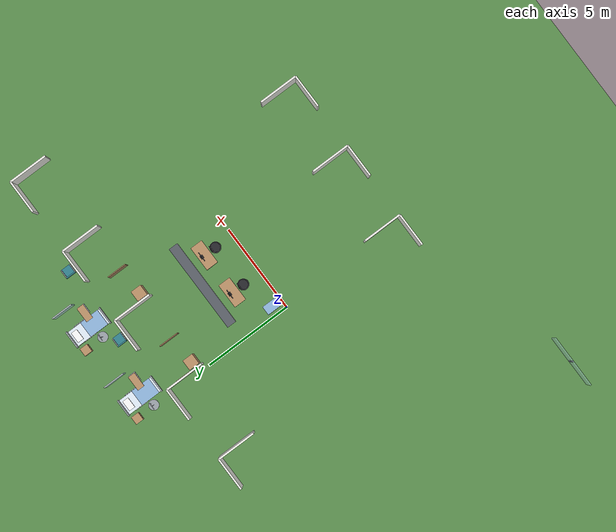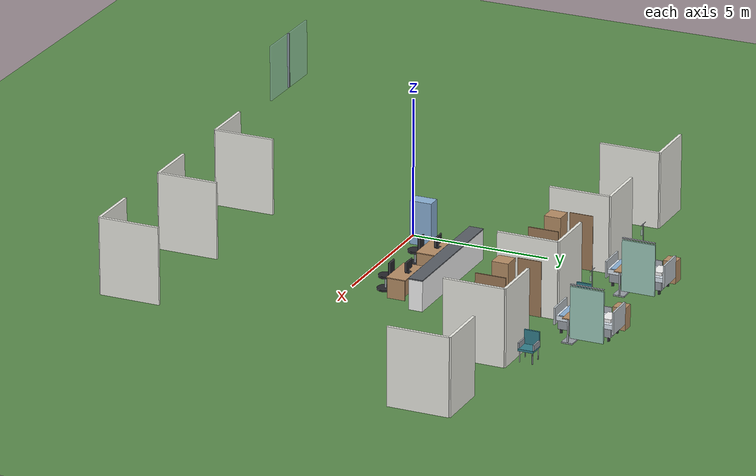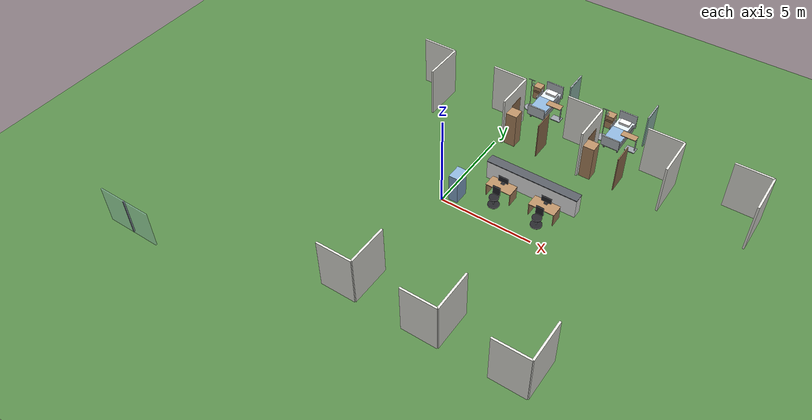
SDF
<sdf version="1.6">
 <world name="hospital">
  <include><uri>model://sun</uri></include>
  <model name="ground_plane">
   <static>true</static>
   <link name="link">
    <collision name="collision">
     <geometry><plane><normal>0 0 1</normal><size>100 100</size></plane></geometry>
     <surface>
      <contact><collide_bitmask>0xffff</collide_bitmask></contact>
      <friction><ode><mu>100</mu><mu2>50</mu2></ode></friction>
     </surface>
    </collision>
    <visual name="visual">
     <cast_shadows>false</cast_shadows>
     <geometry><plane><normal>0 0 1</normal><size>100 100</size></plane></geometry>
     <material>
      <ambient>0.35 0.55 0.3 1</ambient>
      <diffuse>0.35 0.55 0.3 1</diffuse>
      <specular>0 0 0 1</specular>
     </material>
    </visual>
   </link>
  </model>
  <model name="entrance_glass_doors">
   <static>true</static>
   <link name="link">
    <collision name="c0">
     <pose>-11 -10 1.05 0 0 0</pose>
     <geometry><box><size>3 0.06 2.1</size></box></geometry>
    </collision>
    <visual name="v0">
     <pose>-11 -10 1.05 0 0 0</pose>
     <geometry><box><size>3 0.06 2.1</size></box></geometry>
     <material>
      <ambient>0.7 0.85 0.95 0.35</ambient>
      <diffuse>0.7 0.85 0.95 0.35</diffuse>
      <specular>0.1 0.1 0.1 1</specular>
     </material>
    </visual>
    <visual name="v1">
     <pose>-11 -10 1.05 0 0 0</pose>
     <geometry><box><size>0.04 0.08 2.1</size></box></geometry>
     <material>
      <ambient>0.6 0.62 0.65 1</ambient>
      <diffuse>0.6 0.62 0.65 1</diffuse>
      <specular>0.1 0.1 0.1 1</specular>
     </material>
    </visual>
   </link>
  </model>
  <model name="bathroom_N1">
   <static>true</static>
   <link name="link">
    <collision name="c0">
     <pose>-4.1 6.3 1.4 0 0 0</pose>
     <geometry><box><size>0.1 2.2 2.8</size></box></geometry>
    </collision>
    <visual name="v0">
     <pose>-4.1 6.3 1.4 0 0 0</pose>
     <geometry><box><size>0.1 2.2 2.8</size></box></geometry>
     <material>
      <ambient>0.93 0.93 0.9 1</ambient>
      <diffuse>0.93 0.93 0.9 1</diffuse>
      <specular>0.1 0.1 0.1 1</specular>
     </material>
    </visual>
    <collision name="c1">
     <pose>-5.05 7.4 1.4 0 0 0</pose>
     <geometry><box><size>1.9 0.1 2.8</size></box></geometry>
    </collision>
    <visual name="v1">
     <pose>-5.05 7.4 1.4 0 0 0</pose>
     <geometry><box><size>1.9 0.1 2.8</size></box></geometry>
     <material>
      <ambient>0.93 0.93 0.9 1</ambient>
      <diffuse>0.93 0.93 0.9 1</diffuse>
      <specular>0.1 0.1 0.1 1</specular>
     </material>
    </visual>
   </link>
  </model>
  <model name="bathroom_N2">
   <static>true</static>
   <link name="link">
    <collision name="c0">
     <pose>0.3 6.3 1.4 0 0 0</pose>
     <geometry><box><size>0.1 2.2 2.8</size></box></geometry>
    </collision>
    <visual name="v0">
     <pose>0.3 6.3 1.4 0 0 0</pose>
     <geometry><box><size>0.1 2.2 2.8</size></box></geometry>
     <material>
      <ambient>0.93 0.93 0.9 1</ambient>
      <diffuse>0.93 0.93 0.9 1</diffuse>
      <specular>0.1 0.1 0.1 1</specular>
     </material>
    </visual>
    <collision name="c1">
     <pose>-0.65 7.4 1.4 0 0 0</pose>
     <geometry><box><size>1.9 0.1 2.8</size></box></geometry>
    </collision>
    <visual name="v1">
     <pose>-0.65 7.4 1.4 0 0 0</pose>
     <geometry><box><size>1.9 0.1 2.8</size></box></geometry>
     <material>
      <ambient>0.93 0.93 0.9 1</ambient>
      <diffuse>0.93 0.93 0.9 1</diffuse>
      <specular>0.1 0.1 0.1 1</specular>
     </material>
    </visual>
   </link>
  </model>
  <model name="bathroom_door_N2">
   <static>true</static>
   <pose>0.36 6.4 0 0 0 1.5708</pose>
   <link name="link">
    <visual name="v0">
     <pose>0 0 1 0 0 0</pose>
     <geometry><box><size>0.85 0.02 2</size></box></geometry>
     <material>
      <ambient>0.62 0.48 0.34 1</ambient>
      <diffuse>0.62 0.48 0.34 1</diffuse>
      <specular>0.1 0.1 0.1 1</specular>
     </material>
    </visual>
   </link>
  </model>
  <model name="door_N2">
   <static>true</static>
   <pose>2.3 5.83 0 0 0 0</pose>
   <link name="link">
    <collision name="c0">
     <pose>0 0 1.04 0 0 0</pose>
     <geometry><box><size>0.045 1.1 2.08</size></box></geometry>
    </collision>
    <visual name="v0">
     <pose>0 0 1.04 0 0 0</pose>
     <geometry><box><size>0.045 1.1 2.08</size></box></geometry>
     <material>
      <ambient>0.62 0.48 0.34 1</ambient>
      <diffuse>0.62 0.48 0.34 1</diffuse>
      <specular>0.1 0.1 0.1 1</specular>
     </material>
    </visual>
   </link>
  </model>
  <model name="wardrobe_N2">
   <static>true</static>
   <pose>0.7 5.6 0 0 0 3.1416</pose>
   <link name="link">
    <collision name="c0">
     <pose>0 0 1 0 0 0</pose>
     <geometry><box><size>0.6 0.6 2</size></box></geometry>
    </collision>
    <visual name="v0">
     <pose>0 0 1 0 0 0</pose>
     <geometry><box><size>0.6 0.6 2</size></box></geometry>
     <material>
      <ambient>0.72 0.56 0.4 1</ambient>
      <diffuse>0.72 0.56 0.4 1</diffuse>
      <specular>0.1 0.1 0.1 1</specular>
     </material>
    </visual>
    <visual name="v1">
     <pose>0 -0.301 1.025 0 0 0</pose>
     <geometry><box><size>0.02 0.005 0.25</size></box></geometry>
     <material>
      <ambient>0.6 0.62 0.65 1</ambient>
      <diffuse>0.6 0.62 0.65 1</diffuse>
      <specular>0.1 0.1 0.1 1</specular>
     </material>
    </visual>
   </link>
  </model>
  <model name="bed_N2">
   <static>true</static>
   <pose>0.9 8.8 0 0 0 0</pose>
   <link name="link">
    <collision name="c0">
     <pose>-0.38 -0.85 0.075 0 0 0</pose>
     <geometry><cylinder><radius>0.05</radius><length>0.15</length></cylinder></geometry>
    </collision>
    <visual name="v0">
     <pose>-0.38 -0.85 0.075 0 0 0</pose>
     <geometry><cylinder><radius>0.05</radius><length>0.15</length></cylinder></geometry>
     <material>
      <ambient>0.15 0.15 0.17 1</ambient>
      <diffuse>0.15 0.15 0.17 1</diffuse>
      <specular>0.1 0.1 0.1 1</specular>
     </material>
    </visual>
    <collision name="c1">
     <pose>-0.38 0.85 0.075 0 0 0</pose>
     <geometry><cylinder><radius>0.05</radius><length>0.15</length></cylinder></geometry>
    </collision>
    <visual name="v1">
     <pose>-0.38 0.85 0.075 0 0 0</pose>
     <geometry><cylinder><radius>0.05</radius><length>0.15</length></cylinder></geometry>
     <material>
      <ambient>0.15 0.15 0.17 1</ambient>
      <diffuse>0.15 0.15 0.17 1</diffuse>
      <specular>0.1 0.1 0.1 1</specular>
     </material>
    </visual>
    <collision name="c2">
     <pose>0.38 -0.85 0.075 0 0 0</pose>
     <geometry><cylinder><radius>0.05</radius><length>0.15</length></cylinder></geometry>
    </collision>
    <visual name="v2">
     <pose>0.38 -0.85 0.075 0 0 0</pose>
     <geometry><cylinder><radius>0.05</radius><length>0.15</length></cylinder></geometry>
     <material>
      <ambient>0.15 0.15 0.17 1</ambient>
      <diffuse>0.15 0.15 0.17 1</diffuse>
      <specular>0.1 0.1 0.1 1</specular>
     </material>
    </visual>
    <collision name="c3">
     <pose>0.38 0.85 0.075 0 0 0</pose>
     <geometry><cylinder><radius>0.05</radius><length>0.15</length></cylinder></geometry>
    </collision>
    <visual name="v3">
     <pose>0.38 0.85 0.075 0 0 0</pose>
     <geometry><cylinder><radius>0.05</radius><length>0.15</length></cylinder></geometry>
     <material>
      <ambient>0.15 0.15 0.17 1</ambient>
      <diffuse>0.15 0.15 0.17 1</diffuse>
      <specular>0.1 0.1 0.1 1</specular>
     </material>
    </visual>
    <collision name="c4">
     <pose>0 0 0.3 0 0 0</pose>
     <geometry><box><size>0.9 1.9 0.3</size></box></geometry>
    </collision>
    <visual name="v4">
     <pose>0 0 0.3 0 0 0</pose>
     <geometry><box><size>0.9 1.9 0.3</size></box></geometry>
     <material>
      <ambient>0.6 0.62 0.65 1</ambient>
      <diffuse>0.6 0.62 0.65 1</diffuse>
      <specular>0.1 0.1 0.1 1</specular>
     </material>
    </visual>
    <visual name="v5">
     <pose>0 0 0.535 0 0 0</pose>
     <geometry><box><size>0.9 2 0.17</size></box></geometry>
     <material>
      <ambient>0.88 0.92 0.96 1</ambient>
      <diffuse>0.88 0.92 0.96 1</diffuse>
      <specular>0.1 0.1 0.1 1</specular>
     </material>
    </visual>
    <collision name="c6">
     <pose>0 1.05 0.7 0 0 0</pose>
     <geometry><box><size>1 0.06 0.8</size></box></geometry>
    </collision>
    <visual name="v6">
     <pose>0 1.05 0.7 0 0 0</pose>
     <geometry><box><size>1 0.06 0.8</size></box></geometry>
     <material>
      <ambient>0.75 0.78 0.8 1</ambient>
      <diffuse>0.75 0.78 0.8 1</diffuse>
      <specular>0.1 0.1 0.1 1</specular>
     </material>
    </visual>
    <collision name="c7">
     <pose>0 -1.05 0.6 0 0 0</pose>
     <geometry><box><size>1 0.06 0.6</size></box></geometry>
    </collision>
    <visual name="v7">
     <pose>0 -1.05 0.6 0 0 0</pose>
     <geometry><box><size>1 0.06 0.6</size></box></geometry>
     <material>
      <ambient>0.75 0.78 0.8 1</ambient>
      <diffuse>0.75 0.78 0.8 1</diffuse>
      <specular>0.1 0.1 0.1 1</specular>
     </material>
    </visual>
    <visual name="v8">
     <pose>0 0.72 0.68 0 0 0</pose>
     <geometry><box><size>0.6 0.35 0.12</size></box></geometry>
     <material>
      <ambient>0.97 0.97 0.97 1</ambient>
      <diffuse>0.97 0.97 0.97 1</diffuse>
      <specular>0.1 0.1 0.1 1</specular>
     </material>
    </visual>
    <visual name="v9">
     <pose>0 -0.35 0.635 0 0 0</pose>
     <geometry><box><size>0.92 1.1 0.03</size></box></geometry>
     <material>
      <ambient>0.55 0.7 0.85 1</ambient>
      <diffuse>0.55 0.7 0.85 1</diffuse>
      <specular>0.1 0.1 0.1 1</specular>
     </material>
    </visual>
    <visual name="v10">
     <pose>-0.47 0.2 0.73 0 0 0</pose>
     <geometry><box><size>0.03 0.8 0.22</size></box></geometry>
     <material>
      <ambient>0.7 0.72 0.75 1</ambient>
      <diffuse>0.7 0.72 0.75 1</diffuse>
      <specular>0.1 0.1 0.1 1</specular>
     </material>
    </visual>
    <visual name="v11">
     <pose>0.47 0.2 0.73 0 0 0</pose>
     <geometry><box><size>0.03 0.8 0.22</size></box></geometry>
     <material>
      <ambient>0.7 0.72 0.75 1</ambient>
      <diffuse>0.7 0.72 0.75 1</diffuse>
      <specular>0.1 0.1 0.1 1</specular>
     </material>
    </visual>
   </link>
  </model>
  <model name="bedside_cabinet_N2">
   <static>true</static>
   <pose>0.05 9.6 0 0 0 0</pose>
   <link name="link">
    <collision name="c0">
     <pose>0 0 0.4 0 0 0</pose>
     <geometry><box><size>0.45 0.45 0.8</size></box></geometry>
    </collision>
    <visual name="v0">
     <pose>0 0 0.4 0 0 0</pose>
     <geometry><box><size>0.45 0.45 0.8</size></box></geometry>
     <material>
      <ambient>0.72 0.56 0.4 1</ambient>
      <diffuse>0.72 0.56 0.4 1</diffuse>
      <specular>0.1 0.1 0.1 1</specular>
     </material>
    </visual>
    <visual name="v1">
     <pose>0 -0.226 0.51 0 0 0</pose>
     <geometry><box><size>0.35 0.005 0.12</size></box></geometry>
     <material>
      <ambient>0.6 0.45 0.32 1</ambient>
      <diffuse>0.6 0.45 0.32 1</diffuse>
      <specular>0.1 0.1 0.1 1</specular>
     </material>
    </visual>
   </link>
  </model>
  <model name="iv_stand_N2">
   <static>true</static>
   <pose>0.1 8.55 0 0 0 0</pose>
   <link name="link">
    <collision name="c0">
     <pose>0 0 0.015 0 0 0</pose>
     <geometry><cylinder><radius>0.28</radius><length>0.03</length></cylinder></geometry>
    </collision>
    <visual name="v0">
     <pose>0 0 0.015 0 0 0</pose>
     <geometry><cylinder><radius>0.28</radius><length>0.03</length></cylinder></geometry>
     <material>
      <ambient>0.6 0.62 0.65 1</ambient>
      <diffuse>0.6 0.62 0.65 1</diffuse>
      <specular>0.1 0.1 0.1 1</specular>
     </material>
    </visual>
    <collision name="c1">
     <pose>0 0 0.98 0 0 0</pose>
     <geometry><cylinder><radius>0.015</radius><length>1.9</length></cylinder></geometry>
    </collision>
    <visual name="v1">
     <pose>0 0 0.98 0 0 0</pose>
     <geometry><cylinder><radius>0.015</radius><length>1.9</length></cylinder></geometry>
     <material>
      <ambient>0.7 0.72 0.75 1</ambient>
      <diffuse>0.7 0.72 0.75 1</diffuse>
      <specular>0.1 0.1 0.1 1</specular>
     </material>
    </visual>
    <visual name="v2">
     <pose>0 0 1.91 0 0 0</pose>
     <geometry><box><size>0.4 0.02 0.02</size></box></geometry>
     <material>
      <ambient>0.7 0.72 0.75 1</ambient>
      <diffuse>0.7 0.72 0.75 1</diffuse>
      <specular>0.1 0.1 0.1 1</specular>
     </material>
    </visual>
    <visual name="v3">
     <pose>0.12 0 1.64 0 0 0</pose>
     <geometry><box><size>0.1 0.03 0.18</size></box></geometry>
     <material>
      <ambient>0.85 0.92 0.95 0.7</ambient>
      <diffuse>0.85 0.92 0.95 0.7</diffuse>
      <specular>0.1 0.1 0.1 1</specular>
     </material>
    </visual>
   </link>
  </model>
  <model name="overbed_table_N2">
   <static>true</static>
   <pose>1.65 8.5 0 0 0 0</pose>
   <link name="link">
    <collision name="c0">
     <pose>0.15 0 0.025 0 0 0</pose>
     <geometry><box><size>0.55 0.4 0.05</size></box></geometry>
    </collision>
    <visual name="v0">
     <pose>0.15 0 0.025 0 0 0</pose>
     <geometry><box><size>0.55 0.4 0.05</size></box></geometry>
     <material>
      <ambient>0.6 0.62 0.65 1</ambient>
      <diffuse>0.6 0.62 0.65 1</diffuse>
      <specular>0.1 0.1 0.1 1</specular>
     </material>
    </visual>
    <collision name="c1">
     <pose>0.35 0 0.45 0 0 0</pose>
     <geometry><box><size>0.05 0.05 0.8</size></box></geometry>
    </collision>
    <visual name="v1">
     <pose>0.35 0 0.45 0 0 0</pose>
     <geometry><box><size>0.05 0.05 0.8</size></box></geometry>
     <material>
      <ambient>0.7 0.72 0.75 1</ambient>
      <diffuse>0.7 0.72 0.75 1</diffuse>
      <specular>0.1 0.1 0.1 1</specular>
     </material>
    </visual>
    <visual name="v2">
     <pose>-0.05 0 0.865 0 0 0</pose>
     <geometry><box><size>0.85 0.4 0.03</size></box></geometry>
     <material>
      <ambient>0.72 0.56 0.4 1</ambient>
      <diffuse>0.72 0.56 0.4 1</diffuse>
      <specular>0.1 0.1 0.1 1</specular>
     </material>
    </visual>
   </link>
  </model>
  <model name="curtain_N2">
   <static>true</static>
   <pose>2.3 9.3 0 0 0 0</pose>
   <link name="link">
    <collision name="c0">
     <pose>0 0 1.275 0 0 0</pose>
     <geometry><box><size>0.06 1.2 1.85</size></box></geometry>
    </collision>
    <visual name="v0">
     <pose>0 0 1.275 0 0 0</pose>
     <geometry><box><size>0.06 1.2 1.85</size></box></geometry>
     <material>
      <ambient>0.62 0.8 0.74 1</ambient>
      <diffuse>0.62 0.8 0.74 1</diffuse>
      <specular>0.1 0.1 0.1 1</specular>
     </material>
    </visual>
    <visual name="v1">
     <pose>0 0 2.265 0 0 0</pose>
     <geometry><box><size>0.06 1.2 0.03</size></box></geometry>
     <material>
      <ambient>0.7 0.72 0.75 1</ambient>
      <diffuse>0.7 0.72 0.75 1</diffuse>
      <specular>0.1 0.1 0.1 1</specular>
     </material>
    </visual>
   </link>
  </model>
  <model name="bathroom_N3">
   <static>true</static>
   <link name="link">
    <collision name="c0">
     <pose>4.7 6.3 1.4 0 0 0</pose>
     <geometry><box><size>0.1 2.2 2.8</size></box></geometry>
    </collision>
    <visual name="v0">
     <pose>4.7 6.3 1.4 0 0 0</pose>
     <geometry><box><size>0.1 2.2 2.8</size></box></geometry>
     <material>
      <ambient>0.93 0.93 0.9 1</ambient>
      <diffuse>0.93 0.93 0.9 1</diffuse>
      <specular>0.1 0.1 0.1 1</specular>
     </material>
    </visual>
    <collision name="c1">
     <pose>3.75 7.4 1.4 0 0 0</pose>
     <geometry><box><size>1.9 0.1 2.8</size></box></geometry>
    </collision>
    <visual name="v1">
     <pose>3.75 7.4 1.4 0 0 0</pose>
     <geometry><box><size>1.9 0.1 2.8</size></box></geometry>
     <material>
      <ambient>0.93 0.93 0.9 1</ambient>
      <diffuse>0.93 0.93 0.9 1</diffuse>
      <specular>0.1 0.1 0.1 1</specular>
     </material>
    </visual>
   </link>
  </model>
  <model name="bathroom_door_N3">
   <static>true</static>
   <pose>4.76 6.4 0 0 0 1.5708</pose>
   <link name="link">
    <visual name="v0">
     <pose>0 0 1 0 0 0</pose>
     <geometry><box><size>0.85 0.02 2</size></box></geometry>
     <material>
      <ambient>0.62 0.48 0.34 1</ambient>
      <diffuse>0.62 0.48 0.34 1</diffuse>
      <specular>0.1 0.1 0.1 1</specular>
     </material>
    </visual>
   </link>
  </model>
  <model name="door_N3">
   <static>true</static>
   <pose>6.7 5.83 0 0 0 0</pose>
   <link name="link">
    <collision name="c0">
     <pose>0 0 1.04 0 0 0</pose>
     <geometry><box><size>0.045 1.1 2.08</size></box></geometry>
    </collision>
    <visual name="v0">
     <pose>0 0 1.04 0 0 0</pose>
     <geometry><box><size>0.045 1.1 2.08</size></box></geometry>
     <material>
      <ambient>0.62 0.48 0.34 1</ambient>
      <diffuse>0.62 0.48 0.34 1</diffuse>
      <specular>0.1 0.1 0.1 1</specular>
     </material>
    </visual>
   </link>
  </model>
  <model name="wardrobe_N3">
   <static>true</static>
   <pose>5.1 5.6 0 0 0 3.1416</pose>
   <link name="link">
    <collision name="c0">
     <pose>0 0 1 0 0 0</pose>
     <geometry><box><size>0.6 0.6 2</size></box></geometry>
    </collision>
    <visual name="v0">
     <pose>0 0 1 0 0 0</pose>
     <geometry><box><size>0.6 0.6 2</size></box></geometry>
     <material>
      <ambient>0.72 0.56 0.4 1</ambient>
      <diffuse>0.72 0.56 0.4 1</diffuse>
      <specular>0.1 0.1 0.1 1</specular>
     </material>
    </visual>
    <visual name="v1">
     <pose>0 -0.301 1.025 0 0 0</pose>
     <geometry><box><size>0.02 0.005 0.25</size></box></geometry>
     <material>
      <ambient>0.6 0.62 0.65 1</ambient>
      <diffuse>0.6 0.62 0.65 1</diffuse>
      <specular>0.1 0.1 0.1 1</specular>
     </material>
    </visual>
   </link>
  </model>
  <model name="bed_N3">
   <static>true</static>
   <pose>5.3 8.8 0 0 0 0</pose>
   <link name="link">
    <collision name="c0">
     <pose>-0.38 -0.85 0.075 0 0 0</pose>
     <geometry><cylinder><radius>0.05</radius><length>0.15</length></cylinder></geometry>
    </collision>
    <visual name="v0">
     <pose>-0.38 -0.85 0.075 0 0 0</pose>
     <geometry><cylinder><radius>0.05</radius><length>0.15</length></cylinder></geometry>
     <material>
      <ambient>0.15 0.15 0.17 1</ambient>
      <diffuse>0.15 0.15 0.17 1</diffuse>
      <specular>0.1 0.1 0.1 1</specular>
     </material>
    </visual>
    <collision name="c1">
     <pose>-0.38 0.85 0.075 0 0 0</pose>
     <geometry><cylinder><radius>0.05</radius><length>0.15</length></cylinder></geometry>
    </collision>
    <visual name="v1">
     <pose>-0.38 0.85 0.075 0 0 0</pose>
     <geometry><cylinder><radius>0.05</radius><length>0.15</length></cylinder></geometry>
     <material>
      <ambient>0.15 0.15 0.17 1</ambient>
      <diffuse>0.15 0.15 0.17 1</diffuse>
      <specular>0.1 0.1 0.1 1</specular>
     </material>
    </visual>
    <collision name="c2">
     <pose>0.38 -0.85 0.075 0 0 0</pose>
     <geometry><cylinder><radius>0.05</radius><length>0.15</length></cylinder></geometry>
    </collision>
    <visual name="v2">
     <pose>0.38 -0.85 0.075 0 0 0</pose>
     <geometry><cylinder><radius>0.05</radius><length>0.15</length></cylinder></geometry>
     <material>
      <ambient>0.15 0.15 0.17 1</ambient>
      <diffuse>0.15 0.15 0.17 1</diffuse>
      <specular>0.1 0.1 0.1 1</specular>
     </material>
    </visual>
    <collision name="c3">
     <pose>0.38 0.85 0.075 0 0 0</pose>
     <geometry><cylinder><radius>0.05</radius><length>0.15</length></cylinder></geometry>
    </collision>
    <visual name="v3">
     <pose>0.38 0.85 0.075 0 0 0</pose>
     <geometry><cylinder><radius>0.05</radius><length>0.15</length></cylinder></geometry>
     <material>
      <ambient>0.15 0.15 0.17 1</ambient>
      <diffuse>0.15 0.15 0.17 1</diffuse>
      <specular>0.1 0.1 0.1 1</specular>
     </material>
    </visual>
    <collision name="c4">
     <pose>0 0 0.3 0 0 0</pose>
     <geometry><box><size>0.9 1.9 0.3</size></box></geometry>
    </collision>
    <visual name="v4">
     <pose>0 0 0.3 0 0 0</pose>
     <geometry><box><size>0.9 1.9 0.3</size></box></geometry>
     <material>
      <ambient>0.6 0.62 0.65 1</ambient>
      <diffuse>0.6 0.62 0.65 1</diffuse>
      <specular>0.1 0.1 0.1 1</specular>
     </material>
    </visual>
    <visual name="v5">
     <pose>0 0 0.535 0 0 0</pose>
     <geometry><box><size>0.9 2 0.17</size></box></geometry>
     <material>
      <ambient>0.88 0.92 0.96 1</ambient>
      <diffuse>0.88 0.92 0.96 1</diffuse>
      <specular>0.1 0.1 0.1 1</specular>
     </material>
    </visual>
    <collision name="c6">
     <pose>0 1.05 0.7 0 0 0</pose>
     <geometry><box><size>1 0.06 0.8</size></box></geometry>
    </collision>
    <visual name="v6">
     <pose>0 1.05 0.7 0 0 0</pose>
     <geometry><box><size>1 0.06 0.8</size></box></geometry>
     <material>
      <ambient>0.75 0.78 0.8 1</ambient>
      <diffuse>0.75 0.78 0.8 1</diffuse>
      <specular>0.1 0.1 0.1 1</specular>
     </material>
    </visual>
    <collision name="c7">
     <pose>0 -1.05 0.6 0 0 0</pose>
     <geometry><box><size>1 0.06 0.6</size></box></geometry>
    </collision>
    <visual name="v7">
     <pose>0 -1.05 0.6 0 0 0</pose>
     <geometry><box><size>1 0.06 0.6</size></box></geometry>
     <material>
      <ambient>0.75 0.78 0.8 1</ambient>
      <diffuse>0.75 0.78 0.8 1</diffuse>
      <specular>0.1 0.1 0.1 1</specular>
     </material>
    </visual>
    <visual name="v8">
     <pose>0 0.72 0.68 0 0 0</pose>
     <geometry><box><size>0.6 0.35 0.12</size></box></geometry>
     <material>
      <ambient>0.97 0.97 0.97 1</ambient>
      <diffuse>0.97 0.97 0.97 1</diffuse>
      <specular>0.1 0.1 0.1 1</specular>
     </material>
    </visual>
    <visual name="v9">
     <pose>0 -0.35 0.635 0 0 0</pose>
     <geometry><box><size>0.92 1.1 0.03</size></box></geometry>
     <material>
      <ambient>0.55 0.7 0.85 1</ambient>
      <diffuse>0.55 0.7 0.85 1</diffuse>
      <specular>0.1 0.1 0.1 1</specular>
     </material>
    </visual>
    <visual name="v10">
     <pose>-0.47 0.2 0.73 0 0 0</pose>
     <geometry><box><size>0.03 0.8 0.22</size></box></geometry>
     <material>
      <ambient>0.7 0.72 0.75 1</ambient>
      <diffuse>0.7 0.72 0.75 1</diffuse>
      <specular>0.1 0.1 0.1 1</specular>
     </material>
    </visual>
    <visual name="v11">
     <pose>0.47 0.2 0.73 0 0 0</pose>
     <geometry><box><size>0.03 0.8 0.22</size></box></geometry>
     <material>
      <ambient>0.7 0.72 0.75 1</ambient>
      <diffuse>0.7 0.72 0.75 1</diffuse>
      <specular>0.1 0.1 0.1 1</specular>
     </material>
    </visual>
   </link>
  </model>
  <model name="bedside_cabinet_N3">
   <static>true</static>
   <pose>4.45 9.6 0 0 0 0</pose>
   <link name="link">
    <collision name="c0">
     <pose>0 0 0.4 0 0 0</pose>
     <geometry><box><size>0.45 0.45 0.8</size></box></geometry>
    </collision>
    <visual name="v0">
     <pose>0 0 0.4 0 0 0</pose>
     <geometry><box><size>0.45 0.45 0.8</size></box></geometry>
     <material>
      <ambient>0.72 0.56 0.4 1</ambient>
      <diffuse>0.72 0.56 0.4 1</diffuse>
      <specular>0.1 0.1 0.1 1</specular>
     </material>
    </visual>
    <visual name="v1">
     <pose>0 -0.226 0.51 0 0 0</pose>
     <geometry><box><size>0.35 0.005 0.12</size></box></geometry>
     <material>
      <ambient>0.6 0.45 0.32 1</ambient>
      <diffuse>0.6 0.45 0.32 1</diffuse>
      <specular>0.1 0.1 0.1 1</specular>
     </material>
    </visual>
   </link>
  </model>
  <model name="iv_stand_N3">
   <static>true</static>
   <pose>4.5 8.55 0 0 0 0</pose>
   <link name="link">
    <collision name="c0">
     <pose>0 0 0.015 0 0 0</pose>
     <geometry><cylinder><radius>0.28</radius><length>0.03</length></cylinder></geometry>
    </collision>
    <visual name="v0">
     <pose>0 0 0.015 0 0 0</pose>
     <geometry><cylinder><radius>0.28</radius><length>0.03</length></cylinder></geometry>
     <material>
      <ambient>0.6 0.62 0.65 1</ambient>
      <diffuse>0.6 0.62 0.65 1</diffuse>
      <specular>0.1 0.1 0.1 1</specular>
     </material>
    </visual>
    <collision name="c1">
     <pose>0 0 0.98 0 0 0</pose>
     <geometry><cylinder><radius>0.015</radius><length>1.9</length></cylinder></geometry>
    </collision>
    <visual name="v1">
     <pose>0 0 0.98 0 0 0</pose>
     <geometry><cylinder><radius>0.015</radius><length>1.9</length></cylinder></geometry>
     <material>
      <ambient>0.7 0.72 0.75 1</ambient>
      <diffuse>0.7 0.72 0.75 1</diffuse>
      <specular>0.1 0.1 0.1 1</specular>
     </material>
    </visual>
    <visual name="v2">
     <pose>0 0 1.91 0 0 0</pose>
     <geometry><box><size>0.4 0.02 0.02</size></box></geometry>
     <material>
      <ambient>0.7 0.72 0.75 1</ambient>
      <diffuse>0.7 0.72 0.75 1</diffuse>
      <specular>0.1 0.1 0.1 1</specular>
     </material>
    </visual>
    <visual name="v3">
     <pose>0.12 0 1.64 0 0 0</pose>
     <geometry><box><size>0.1 0.03 0.18</size></box></geometry>
     <material>
      <ambient>0.85 0.92 0.95 0.7</ambient>
      <diffuse>0.85 0.92 0.95 0.7</diffuse>
      <specular>0.1 0.1 0.1 1</specular>
     </material>
    </visual>
   </link>
  </model>
  <model name="visitor_chair_N3">
   <static>true</static>
   <pose>3.85 7.9 0 0 0 1.5708</pose>
   <link name="link">
    <collision name="c0">
     <pose>-0.23 -0.23 0.2 0 0 0</pose>
     <geometry><cylinder><radius>0.02</radius><length>0.4</length></cylinder></geometry>
    </collision>
    <visual name="v0">
     <pose>-0.23 -0.23 0.2 0 0 0</pose>
     <geometry><cylinder><radius>0.02</radius><length>0.4</length></cylinder></geometry>
     <material>
      <ambient>0.6 0.62 0.65 1</ambient>
      <diffuse>0.6 0.62 0.65 1</diffuse>
      <specular>0.1 0.1 0.1 1</specular>
     </material>
    </visual>
    <collision name="c1">
     <pose>-0.23 0.23 0.2 0 0 0</pose>
     <geometry><cylinder><radius>0.02</radius><length>0.4</length></cylinder></geometry>
    </collision>
    <visual name="v1">
     <pose>-0.23 0.23 0.2 0 0 0</pose>
     <geometry><cylinder><radius>0.02</radius><length>0.4</length></cylinder></geometry>
     <material>
      <ambient>0.6 0.62 0.65 1</ambient>
      <diffuse>0.6 0.62 0.65 1</diffuse>
      <specular>0.1 0.1 0.1 1</specular>
     </material>
    </visual>
    <collision name="c2">
     <pose>0.23 -0.23 0.2 0 0 0</pose>
     <geometry><cylinder><radius>0.02</radius><length>0.4</length></cylinder></geometry>
    </collision>
    <visual name="v2">
     <pose>0.23 -0.23 0.2 0 0 0</pose>
     <geometry><cylinder><radius>0.02</radius><length>0.4</length></cylinder></geometry>
     <material>
      <ambient>0.6 0.62 0.65 1</ambient>
      <diffuse>0.6 0.62 0.65 1</diffuse>
      <specular>0.1 0.1 0.1 1</specular>
     </material>
    </visual>
    <collision name="c3">
     <pose>0.23 0.23 0.2 0 0 0</pose>
     <geometry><cylinder><radius>0.02</radius><length>0.4</length></cylinder></geometry>
    </collision>
    <visual name="v3">
     <pose>0.23 0.23 0.2 0 0 0</pose>
     <geometry><cylinder><radius>0.02</radius><length>0.4</length></cylinder></geometry>
     <material>
      <ambient>0.6 0.62 0.65 1</ambient>
      <diffuse>0.6 0.62 0.65 1</diffuse>
      <specular>0.1 0.1 0.1 1</specular>
     </material>
    </visual>
    <visual name="v4">
     <pose>0 0 0.44 0 0 0</pose>
     <geometry><box><size>0.55 0.55 0.08</size></box></geometry>
     <material>
      <ambient>0.2 0.5 0.55 1</ambient>
      <diffuse>0.2 0.5 0.55 1</diffuse>
      <specular>0.1 0.1 0.1 1</specular>
     </material>
    </visual>
    <visual name="v5">
     <pose>0 0.25 0.73 0 0 0</pose>
     <geometry><box><size>0.55 0.06 0.5</size></box></geometry>
     <material>
      <ambient>0.2 0.5 0.55 1</ambient>
      <diffuse>0.2 0.5 0.55 1</diffuse>
      <specular>0.1 0.1 0.1 1</specular>
     </material>
    </visual>
    <visual name="v6">
     <pose>-0.27 0 0.58 0 0 0</pose>
     <geometry><box><size>0.05 0.5 0.2</size></box></geometry>
     <material>
      <ambient>0.6 0.62 0.65 1</ambient>
      <diffuse>0.6 0.62 0.65 1</diffuse>
      <specular>0.1 0.1 0.1 1</specular>
     </material>
    </visual>
    <visual name="v7">
     <pose>0.27 0 0.58 0 0 0</pose>
     <geometry><box><size>0.05 0.5 0.2</size></box></geometry>
     <material>
      <ambient>0.6 0.62 0.65 1</ambient>
      <diffuse>0.6 0.62 0.65 1</diffuse>
      <specular>0.1 0.1 0.1 1</specular>
     </material>
    </visual>
   </link>
  </model>
  <model name="overbed_table_N3">
   <static>true</static>
   <pose>6.05 8.5 0 0 0 0</pose>
   <link name="link">
    <collision name="c0">
     <pose>0.15 0 0.025 0 0 0</pose>
     <geometry><box><size>0.55 0.4 0.05</size></box></geometry>
    </collision>
    <visual name="v0">
     <pose>0.15 0 0.025 0 0 0</pose>
     <geometry><box><size>0.55 0.4 0.05</size></box></geometry>
     <material>
      <ambient>0.6 0.62 0.65 1</ambient>
      <diffuse>0.6 0.62 0.65 1</diffuse>
      <specular>0.1 0.1 0.1 1</specular>
     </material>
    </visual>
    <collision name="c1">
     <pose>0.35 0 0.45 0 0 0</pose>
     <geometry><box><size>0.05 0.05 0.8</size></box></geometry>
    </collision>
    <visual name="v1">
     <pose>0.35 0 0.45 0 0 0</pose>
     <geometry><box><size>0.05 0.05 0.8</size></box></geometry>
     <material>
      <ambient>0.7 0.72 0.75 1</ambient>
      <diffuse>0.7 0.72 0.75 1</diffuse>
      <specular>0.1 0.1 0.1 1</specular>
     </material>
    </visual>
    <visual name="v2">
     <pose>-0.05 0 0.865 0 0 0</pose>
     <geometry><box><size>0.85 0.4 0.03</size></box></geometry>
     <material>
      <ambient>0.72 0.56 0.4 1</ambient>
      <diffuse>0.72 0.56 0.4 1</diffuse>
      <specular>0.1 0.1 0.1 1</specular>
     </material>
    </visual>
   </link>
  </model>
  <model name="curtain_N3">
   <static>true</static>
   <pose>6.7 9.3 0 0 0 0</pose>
   <link name="link">
    <collision name="c0">
     <pose>0 0 1.275 0 0 0</pose>
     <geometry><box><size>0.06 1.2 1.85</size></box></geometry>
    </collision>
    <visual name="v0">
     <pose>0 0 1.275 0 0 0</pose>
     <geometry><box><size>0.06 1.2 1.85</size></box></geometry>
     <material>
      <ambient>0.62 0.8 0.74 1</ambient>
      <diffuse>0.62 0.8 0.74 1</diffuse>
      <specular>0.1 0.1 0.1 1</specular>
     </material>
    </visual>
    <visual name="v1">
     <pose>0 0 2.265 0 0 0</pose>
     <geometry><box><size>0.06 1.2 0.03</size></box></geometry>
     <material>
      <ambient>0.7 0.72 0.75 1</ambient>
      <diffuse>0.7 0.72 0.75 1</diffuse>
      <specular>0.1 0.1 0.1 1</specular>
     </material>
    </visual>
   </link>
  </model>
  <model name="bathroom_N4">
   <static>true</static>
   <link name="link">
    <collision name="c0">
     <pose>9.1 6.3 1.4 0 0 0</pose>
     <geometry><box><size>0.1 2.2 2.8</size></box></geometry>
    </collision>
    <visual name="v0">
     <pose>9.1 6.3 1.4 0 0 0</pose>
     <geometry><box><size>0.1 2.2 2.8</size></box></geometry>
     <material>
      <ambient>0.93 0.93 0.9 1</ambient>
      <diffuse>0.93 0.93 0.9 1</diffuse>
      <specular>0.1 0.1 0.1 1</specular>
     </material>
    </visual>
    <collision name="c1">
     <pose>8.15 7.4 1.4 0 0 0</pose>
     <geometry><box><size>1.9 0.1 2.8</size></box></geometry>
    </collision>
    <visual name="v1">
     <pose>8.15 7.4 1.4 0 0 0</pose>
     <geometry><box><size>1.9 0.1 2.8</size></box></geometry>
     <material>
      <ambient>0.93 0.93 0.9 1</ambient>
      <diffuse>0.93 0.93 0.9 1</diffuse>
      <specular>0.1 0.1 0.1 1</specular>
     </material>
    </visual>
   </link>
  </model>
  <model name="visitor_chair_N4">
   <static>true</static>
   <pose>8.25 7.9 0 0 0 1.5708</pose>
   <link name="link">
    <collision name="c0">
     <pose>-0.23 -0.23 0.2 0 0 0</pose>
     <geometry><cylinder><radius>0.02</radius><length>0.4</length></cylinder></geometry>
    </collision>
    <visual name="v0">
     <pose>-0.23 -0.23 0.2 0 0 0</pose>
     <geometry><cylinder><radius>0.02</radius><length>0.4</length></cylinder></geometry>
     <material>
      <ambient>0.6 0.62 0.65 1</ambient>
      <diffuse>0.6 0.62 0.65 1</diffuse>
      <specular>0.1 0.1 0.1 1</specular>
     </material>
    </visual>
    <collision name="c1">
     <pose>-0.23 0.23 0.2 0 0 0</pose>
     <geometry><cylinder><radius>0.02</radius><length>0.4</length></cylinder></geometry>
    </collision>
    <visual name="v1">
     <pose>-0.23 0.23 0.2 0 0 0</pose>
     <geometry><cylinder><radius>0.02</radius><length>0.4</length></cylinder></geometry>
     <material>
      <ambient>0.6 0.62 0.65 1</ambient>
      <diffuse>0.6 0.62 0.65 1</diffuse>
      <specular>0.1 0.1 0.1 1</specular>
     </material>
    </visual>
    <collision name="c2">
     <pose>0.23 -0.23 0.2 0 0 0</pose>
     <geometry><cylinder><radius>0.02</radius><length>0.4</length></cylinder></geometry>
    </collision>
    <visual name="v2">
     <pose>0.23 -0.23 0.2 0 0 0</pose>
     <geometry><cylinder><radius>0.02</radius><length>0.4</length></cylinder></geometry>
     <material>
      <ambient>0.6 0.62 0.65 1</ambient>
      <diffuse>0.6 0.62 0.65 1</diffuse>
      <specular>0.1 0.1 0.1 1</specular>
     </material>
    </visual>
    <collision name="c3">
     <pose>0.23 0.23 0.2 0 0 0</pose>
     <geometry><cylinder><radius>0.02</radius><length>0.4</length></cylinder></geometry>
    </collision>
    <visual name="v3">
     <pose>0.23 0.23 0.2 0 0 0</pose>
     <geometry><cylinder><radius>0.02</radius><length>0.4</length></cylinder></geometry>
     <material>
      <ambient>0.6 0.62 0.65 1</ambient>
      <diffuse>0.6 0.62 0.65 1</diffuse>
      <specular>0.1 0.1 0.1 1</specular>
     </material>
    </visual>
    <visual name="v4">
     <pose>0 0 0.44 0 0 0</pose>
     <geometry><box><size>0.55 0.55 0.08</size></box></geometry>
     <material>
      <ambient>0.2 0.5 0.55 1</ambient>
      <diffuse>0.2 0.5 0.55 1</diffuse>
      <specular>0.1 0.1 0.1 1</specular>
     </material>
    </visual>
    <visual name="v5">
     <pose>0 0.25 0.73 0 0 0</pose>
     <geometry><box><size>0.55 0.06 0.5</size></box></geometry>
     <material>
      <ambient>0.2 0.5 0.55 1</ambient>
      <diffuse>0.2 0.5 0.55 1</diffuse>
      <specular>0.1 0.1 0.1 1</specular>
     </material>
    </visual>
    <visual name="v6">
     <pose>-0.27 0 0.58 0 0 0</pose>
     <geometry><box><size>0.05 0.5 0.2</size></box></geometry>
     <material>
      <ambient>0.6 0.62 0.65 1</ambient>
      <diffuse>0.6 0.62 0.65 1</diffuse>
      <specular>0.1 0.1 0.1 1</specular>
     </material>
    </visual>
    <visual name="v7">
     <pose>0.27 0 0.58 0 0 0</pose>
     <geometry><box><size>0.05 0.5 0.2</size></box></geometry>
     <material>
      <ambient>0.6 0.62 0.65 1</ambient>
      <diffuse>0.6 0.62 0.65 1</diffuse>
      <specular>0.1 0.1 0.1 1</specular>
     </material>
    </visual>
   </link>
  </model>
  <model name="bathroom_N5">
   <static>true</static>
   <link name="link">
    <collision name="c0">
     <pose>13.5 6.3 1.4 0 0 0</pose>
     <geometry><box><size>0.1 2.2 2.8</size></box></geometry>
    </collision>
    <visual name="v0">
     <pose>13.5 6.3 1.4 0 0 0</pose>
     <geometry><box><size>0.1 2.2 2.8</size></box></geometry>
     <material>
      <ambient>0.93 0.93 0.9 1</ambient>
      <diffuse>0.93 0.93 0.9 1</diffuse>
      <specular>0.1 0.1 0.1 1</specular>
     </material>
    </visual>
    <collision name="c1">
     <pose>12.55 7.4 1.4 0 0 0</pose>
     <geometry><box><size>1.9 0.1 2.8</size></box></geometry>
    </collision>
    <visual name="v1">
     <pose>12.55 7.4 1.4 0 0 0</pose>
     <geometry><box><size>1.9 0.1 2.8</size></box></geometry>
     <material>
      <ambient>0.93 0.93 0.9 1</ambient>
      <diffuse>0.93 0.93 0.9 1</diffuse>
      <specular>0.1 0.1 0.1 1</specular>
     </material>
    </visual>
   </link>
  </model>
  <model name="bathroom_S2">
   <static>true</static>
   <link name="link">
    <collision name="c0">
     <pose>0.3 -6.3 1.4 0 0 0</pose>
     <geometry><box><size>0.1 2.2 2.8</size></box></geometry>
    </collision>
    <visual name="v0">
     <pose>0.3 -6.3 1.4 0 0 0</pose>
     <geometry><box><size>0.1 2.2 2.8</size></box></geometry>
     <material>
      <ambient>0.93 0.93 0.9 1</ambient>
      <diffuse>0.93 0.93 0.9 1</diffuse>
      <specular>0.1 0.1 0.1 1</specular>
     </material>
    </visual>
    <collision name="c1">
     <pose>-0.65 -7.4 1.4 0 0 0</pose>
     <geometry><box><size>1.9 0.1 2.8</size></box></geometry>
    </collision>
    <visual name="v1">
     <pose>-0.65 -7.4 1.4 0 0 0</pose>
     <geometry><box><size>1.9 0.1 2.8</size></box></geometry>
     <material>
      <ambient>0.93 0.93 0.9 1</ambient>
      <diffuse>0.93 0.93 0.9 1</diffuse>
      <specular>0.1 0.1 0.1 1</specular>
     </material>
    </visual>
   </link>
  </model>
  <model name="bathroom_S3">
   <static>true</static>
   <link name="link">
    <collision name="c0">
     <pose>4.7 -6.3 1.4 0 0 0</pose>
     <geometry><box><size>0.1 2.2 2.8</size></box></geometry>
    </collision>
    <visual name="v0">
     <pose>4.7 -6.3 1.4 0 0 0</pose>
     <geometry><box><size>0.1 2.2 2.8</size></box></geometry>
     <material>
      <ambient>0.93 0.93 0.9 1</ambient>
      <diffuse>0.93 0.93 0.9 1</diffuse>
      <specular>0.1 0.1 0.1 1</specular>
     </material>
    </visual>
    <collision name="c1">
     <pose>3.75 -7.4 1.4 0 0 0</pose>
     <geometry><box><size>1.9 0.1 2.8</size></box></geometry>
    </collision>
    <visual name="v1">
     <pose>3.75 -7.4 1.4 0 0 0</pose>
     <geometry><box><size>1.9 0.1 2.8</size></box></geometry>
     <material>
      <ambient>0.93 0.93 0.9 1</ambient>
      <diffuse>0.93 0.93 0.9 1</diffuse>
      <specular>0.1 0.1 0.1 1</specular>
     </material>
    </visual>
   </link>
  </model>
  <model name="bathroom_S4">
   <static>true</static>
   <link name="link">
    <collision name="c0">
     <pose>9.1 -6.3 1.4 0 0 0</pose>
     <geometry><box><size>0.1 2.2 2.8</size></box></geometry>
    </collision>
    <visual name="v0">
     <pose>9.1 -6.3 1.4 0 0 0</pose>
     <geometry><box><size>0.1 2.2 2.8</size></box></geometry>
     <material>
      <ambient>0.93 0.93 0.9 1</ambient>
      <diffuse>0.93 0.93 0.9 1</diffuse>
      <specular>0.1 0.1 0.1 1</specular>
     </material>
    </visual>
    <collision name="c1">
     <pose>8.15 -7.4 1.4 0 0 0</pose>
     <geometry><box><size>1.9 0.1 2.8</size></box></geometry>
    </collision>
    <visual name="v1">
     <pose>8.15 -7.4 1.4 0 0 0</pose>
     <geometry><box><size>1.9 0.1 2.8</size></box></geometry>
     <material>
      <ambient>0.93 0.93 0.9 1</ambient>
      <diffuse>0.93 0.93 0.9 1</diffuse>
      <specular>0.1 0.1 0.1 1</specular>
     </material>
    </visual>
   </link>
  </model>
  <model name="nurse_counter">
   <static>true</static>
   <pose>3.5 2.8 0 0 0 0</pose>
   <link name="link">
    <collision name="c0">
     <pose>0 0 0.55 0 0 0</pose>
     <geometry><box><size>5 0.5 1.1</size></box></geometry>
    </collision>
    <visual name="v0">
     <pose>0 0 0.55 0 0 0</pose>
     <geometry><box><size>5 0.5 1.1</size></box></geometry>
     <material>
      <ambient>0.97 0.97 0.97 1</ambient>
      <diffuse>0.97 0.97 0.97 1</diffuse>
      <specular>0.1 0.1 0.1 1</specular>
     </material>
    </visual>
    <visual name="v1">
     <pose>0 0 1.12 0 0 0</pose>
     <geometry><box><size>5.02 0.52 0.04</size></box></geometry>
     <material>
      <ambient>0.35 0.37 0.4 1</ambient>
      <diffuse>0.35 0.37 0.4 1</diffuse>
      <specular>0.1 0.1 0.1 1</specular>
     </material>
    </visual>
   </link>
  </model>
  <model name="nurse_desk_1">
   <static>true</static>
   <pose>2.3 1.8 0 0 0 0</pose>
   <link name="link">
    <visual name="v0">
     <pose>0 0 0.735 0 0 0</pose>
     <geometry><box><size>1.4 0.7 0.03</size></box></geometry>
     <material>
      <ambient>0.72 0.56 0.4 1</ambient>
      <diffuse>0.72 0.56 0.4 1</diffuse>
      <specular>0.1 0.1 0.1 1</specular>
     </material>
    </visual>
    <collision name="c1">
     <pose>-0.67 0 0.36 0 0 0</pose>
     <geometry><box><size>0.04 0.66 0.72</size></box></geometry>
    </collision>
    <visual name="v1">
     <pose>-0.67 0 0.36 0 0 0</pose>
     <geometry><box><size>0.04 0.66 0.72</size></box></geometry>
     <material>
      <ambient>0.72 0.56 0.4 1</ambient>
      <diffuse>0.72 0.56 0.4 1</diffuse>
      <specular>0.1 0.1 0.1 1</specular>
     </material>
    </visual>
    <collision name="c2">
     <pose>0.67 0 0.36 0 0 0</pose>
     <geometry><box><size>0.04 0.66 0.72</size></box></geometry>
    </collision>
    <visual name="v2">
     <pose>0.67 0 0.36 0 0 0</pose>
     <geometry><box><size>0.04 0.66 0.72</size></box></geometry>
     <material>
      <ambient>0.72 0.56 0.4 1</ambient>
      <diffuse>0.72 0.56 0.4 1</diffuse>
      <specular>0.1 0.1 0.1 1</specular>
     </material>
    </visual>
    <collision name="c3">
     <pose>0 0.32 0.435 0 0 0</pose>
     <geometry><box><size>1.32 0.02 0.57</size></box></geometry>
    </collision>
    <visual name="v3">
     <pose>0 0.32 0.435 0 0 0</pose>
     <geometry><box><size>1.32 0.02 0.57</size></box></geometry>
     <material>
      <ambient>0.72 0.56 0.4 1</ambient>
      <diffuse>0.72 0.56 0.4 1</diffuse>
      <specular>0.1 0.1 0.1 1</specular>
     </material>
    </visual>
    <visual name="v4">
     <pose>0 0.15 0.76 0 0 0</pose>
     <geometry><box><size>0.2 0.15 0.02</size></box></geometry>
     <material>
      <ambient>0.15 0.15 0.17 1</ambient>
      <diffuse>0.15 0.15 0.17 1</diffuse>
      <specular>0.1 0.1 0.1 1</specular>
     </material>
    </visual>
    <visual name="v5">
     <pose>0 0.17 0.83 0 0 0</pose>
     <geometry><box><size>0.04 0.04 0.12</size></box></geometry>
     <material>
      <ambient>0.15 0.15 0.17 1</ambient>
      <diffuse>0.15 0.15 0.17 1</diffuse>
      <specular>0.1 0.1 0.1 1</specular>
     </material>
    </visual>
    <visual name="v6">
     <pose>0 0.15 1.015 0 0 0</pose>
     <geometry><box><size>0.55 0.03 0.33</size></box></geometry>
     <material>
      <ambient>0.15 0.15 0.17 1</ambient>
      <diffuse>0.15 0.15 0.17 1</diffuse>
      <specular>0.1 0.1 0.1 1</specular>
     </material>
    </visual>
   </link>
  </model>
  <model name="nurse_desk_2">
   <static>true</static>
   <pose>4.7 1.8 0 0 0 0</pose>
   <link name="link">
    <visual name="v0">
     <pose>0 0 0.735 0 0 0</pose>
     <geometry><box><size>1.4 0.7 0.03</size></box></geometry>
     <material>
      <ambient>0.72 0.56 0.4 1</ambient>
      <diffuse>0.72 0.56 0.4 1</diffuse>
      <specular>0.1 0.1 0.1 1</specular>
     </material>
    </visual>
    <collision name="c1">
     <pose>-0.67 0 0.36 0 0 0</pose>
     <geometry><box><size>0.04 0.66 0.72</size></box></geometry>
    </collision>
    <visual name="v1">
     <pose>-0.67 0 0.36 0 0 0</pose>
     <geometry><box><size>0.04 0.66 0.72</size></box></geometry>
     <material>
      <ambient>0.72 0.56 0.4 1</ambient>
      <diffuse>0.72 0.56 0.4 1</diffuse>
      <specular>0.1 0.1 0.1 1</specular>
     </material>
    </visual>
    <collision name="c2">
     <pose>0.67 0 0.36 0 0 0</pose>
     <geometry><box><size>0.04 0.66 0.72</size></box></geometry>
    </collision>
    <visual name="v2">
     <pose>0.67 0 0.36 0 0 0</pose>
     <geometry><box><size>0.04 0.66 0.72</size></box></geometry>
     <material>
      <ambient>0.72 0.56 0.4 1</ambient>
      <diffuse>0.72 0.56 0.4 1</diffuse>
      <specular>0.1 0.1 0.1 1</specular>
     </material>
    </visual>
    <collision name="c3">
     <pose>0 0.32 0.435 0 0 0</pose>
     <geometry><box><size>1.32 0.02 0.57</size></box></geometry>
    </collision>
    <visual name="v3">
     <pose>0 0.32 0.435 0 0 0</pose>
     <geometry><box><size>1.32 0.02 0.57</size></box></geometry>
     <material>
      <ambient>0.72 0.56 0.4 1</ambient>
      <diffuse>0.72 0.56 0.4 1</diffuse>
      <specular>0.1 0.1 0.1 1</specular>
     </material>
    </visual>
    <visual name="v4">
     <pose>0 0.15 0.76 0 0 0</pose>
     <geometry><box><size>0.2 0.15 0.02</size></box></geometry>
     <material>
      <ambient>0.15 0.15 0.17 1</ambient>
      <diffuse>0.15 0.15 0.17 1</diffuse>
      <specular>0.1 0.1 0.1 1</specular>
     </material>
    </visual>
    <visual name="v5">
     <pose>0 0.17 0.83 0 0 0</pose>
     <geometry><box><size>0.04 0.04 0.12</size></box></geometry>
     <material>
      <ambient>0.15 0.15 0.17 1</ambient>
      <diffuse>0.15 0.15 0.17 1</diffuse>
      <specular>0.1 0.1 0.1 1</specular>
     </material>
    </visual>
    <visual name="v6">
     <pose>0 0.15 1.015 0 0 0</pose>
     <geometry><box><size>0.55 0.03 0.33</size></box></geometry>
     <material>
      <ambient>0.15 0.15 0.17 1</ambient>
      <diffuse>0.15 0.15 0.17 1</diffuse>
      <specular>0.1 0.1 0.1 1</specular>
     </material>
    </visual>
   </link>
  </model>
  <model name="nurse_chair_1">
   <static>true</static>
   <pose>2.3 1.1 0 0 0 0</pose>
   <link name="link">
    <collision name="c0">
     <pose>0 0 0.025 0 0 0</pose>
     <geometry><cylinder><radius>0.3</radius><length>0.05</length></cylinder></geometry>
    </collision>
    <visual name="v0">
     <pose>0 0 0.025 0 0 0</pose>
     <geometry><cylinder><radius>0.3</radius><length>0.05</length></cylinder></geometry>
     <material>
      <ambient>0.15 0.15 0.17 1</ambient>
      <diffuse>0.15 0.15 0.17 1</diffuse>
      <specular>0.1 0.1 0.1 1</specular>
     </material>
    </visual>
    <collision name="c1">
     <pose>0 0 0.25 0 0 0</pose>
     <geometry><cylinder><radius>0.03</radius><length>0.4</length></cylinder></geometry>
    </collision>
    <visual name="v1">
     <pose>0 0 0.25 0 0 0</pose>
     <geometry><cylinder><radius>0.03</radius><length>0.4</length></cylinder></geometry>
     <material>
      <ambient>0.6 0.62 0.65 1</ambient>
      <diffuse>0.6 0.62 0.65 1</diffuse>
      <specular>0.1 0.1 0.1 1</specular>
     </material>
    </visual>
    <visual name="v2">
     <pose>0 0 0.49 0 0 0</pose>
     <geometry><cylinder><radius>0.25</radius><length>0.08</length></cylinder></geometry>
     <material>
      <ambient>0.15 0.15 0.17 1</ambient>
      <diffuse>0.15 0.15 0.17 1</diffuse>
      <specular>0.1 0.1 0.1 1</specular>
     </material>
    </visual>
    <visual name="v3">
     <pose>0 0.22 0.8 0 0 0</pose>
     <geometry><box><size>0.42 0.05 0.5</size></box></geometry>
     <material>
      <ambient>0.15 0.15 0.17 1</ambient>
      <diffuse>0.15 0.15 0.17 1</diffuse>
      <specular>0.1 0.1 0.1 1</specular>
     </material>
    </visual>
   </link>
  </model>
  <model name="nurse_chair_2">
   <static>true</static>
   <pose>4.7 1.1 0 0 0 0</pose>
   <link name="link">
    <collision name="c0">
     <pose>0 0 0.025 0 0 0</pose>
     <geometry><cylinder><radius>0.3</radius><length>0.05</length></cylinder></geometry>
    </collision>
    <visual name="v0">
     <pose>0 0 0.025 0 0 0</pose>
     <geometry><cylinder><radius>0.3</radius><length>0.05</length></cylinder></geometry>
     <material>
      <ambient>0.15 0.15 0.17 1</ambient>
      <diffuse>0.15 0.15 0.17 1</diffuse>
      <specular>0.1 0.1 0.1 1</specular>
     </material>
    </visual>
    <collision name="c1">
     <pose>0 0 0.25 0 0 0</pose>
     <geometry><cylinder><radius>0.03</radius><length>0.4</length></cylinder></geometry>
    </collision>
    <visual name="v1">
     <pose>0 0 0.25 0 0 0</pose>
     <geometry><cylinder><radius>0.03</radius><length>0.4</length></cylinder></geometry>
     <material>
      <ambient>0.6 0.62 0.65 1</ambient>
      <diffuse>0.6 0.62 0.65 1</diffuse>
      <specular>0.1 0.1 0.1 1</specular>
     </material>
    </visual>
    <visual name="v2">
     <pose>0 0 0.49 0 0 0</pose>
     <geometry><cylinder><radius>0.25</radius><length>0.08</length></cylinder></geometry>
     <material>
      <ambient>0.15 0.15 0.17 1</ambient>
      <diffuse>0.15 0.15 0.17 1</diffuse>
      <specular>0.1 0.1 0.1 1</specular>
     </material>
    </visual>
    <visual name="v3">
     <pose>0 0.22 0.8 0 0 0</pose>
     <geometry><box><size>0.42 0.05 0.5</size></box></geometry>
     <material>
      <ambient>0.15 0.15 0.17 1</ambient>
      <diffuse>0.15 0.15 0.17 1</diffuse>
      <specular>0.1 0.1 0.1 1</specular>
     </material>
    </visual>
   </link>
  </model>
  <model name="med_dispensing_cabinet">
   <static>true</static>
   <pose>0.5 0.6 0 0 0 -1.5708</pose>
   <link name="link">
    <collision name="c0">
     <pose>0 0 0.8 0 0 0</pose>
     <geometry><box><size>0.8 0.5 1.6</size></box></geometry>
    </collision>
    <visual name="v0">
     <pose>0 0 0.8 0 0 0</pose>
     <geometry><box><size>0.8 0.5 1.6</size></box></geometry>
     <material>
      <ambient>0.55 0.7 0.85 1</ambient>
      <diffuse>0.55 0.7 0.85 1</diffuse>
      <specular>0.1 0.1 0.1 1</specular>
     </material>
    </visual>
    <visual name="v1">
     <pose>0 -0.253 0.95 0 0 0</pose>
     <geometry><box><size>0.64 0.005 0.9</size></box></geometry>
     <material>
      <ambient>0.15 0.15 0.17 1</ambient>
      <diffuse>0.15 0.15 0.17 1</diffuse>
      <specular>0.1 0.1 0.1 1</specular>
     </material>
    </visual>
   </link>
  </model>
 </world>
</sdf>
